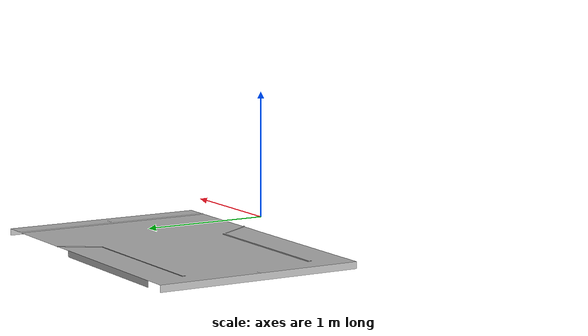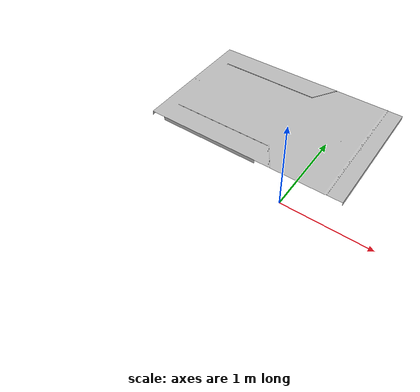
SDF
<?xml version="1.0"?>
<sdf version="1.9">
  <model name="TJunctionDeadEnd Road">
    <static>true</static>
    <link name="link">
      <collision name='collision'>
        <geometry>
          <mesh>
            <scale>0.05 0.05 0.05</scale>
            <uri>model://Circuito/TJunctionDeadEnd Road/meshes/TJunctionDeadEnd.dae</uri>
          </mesh>
        </geometry>
      </collision>
      <visual name="road">
        <geometry>
          <mesh>
            <scale>0.05 0.05 0.05</scale>
            <uri>model://Circuito/TJunctionDeadEnd Road/meshes/TJunctionDeadEnd.dae</uri>
          </mesh>
        </geometry>
      </visual>
    </link>
  </model>
</sdf>
